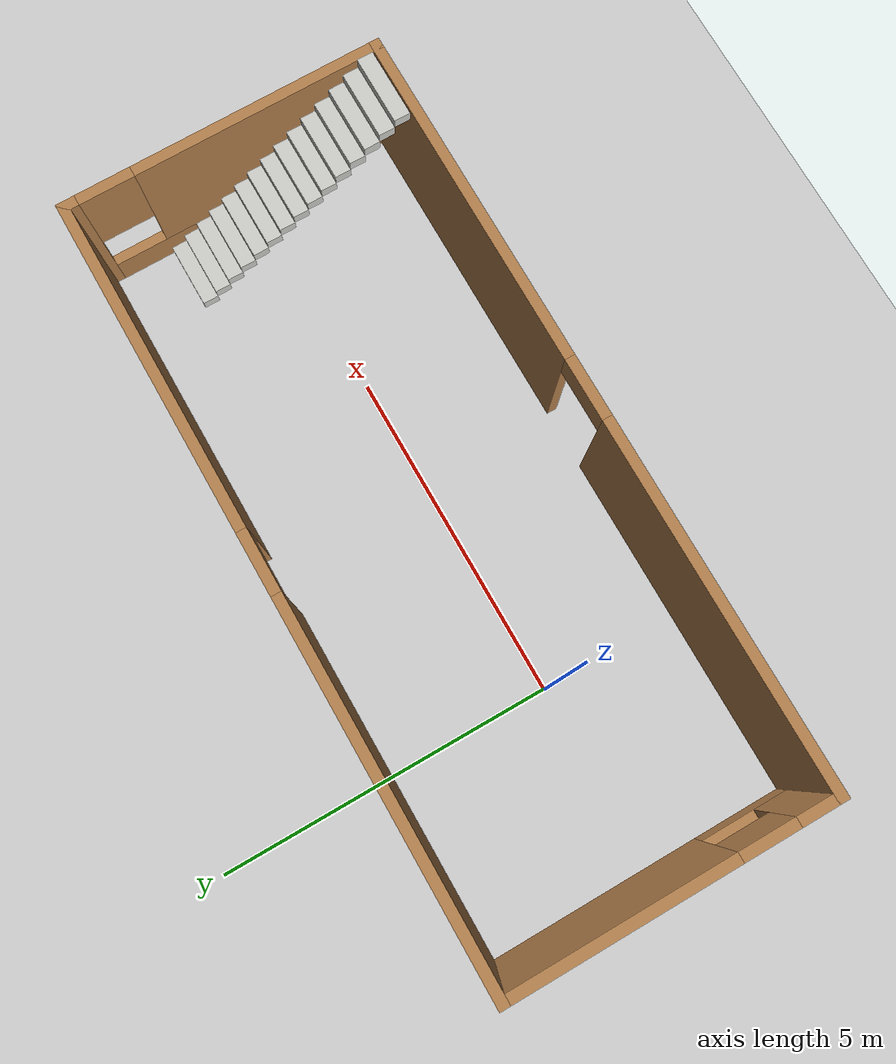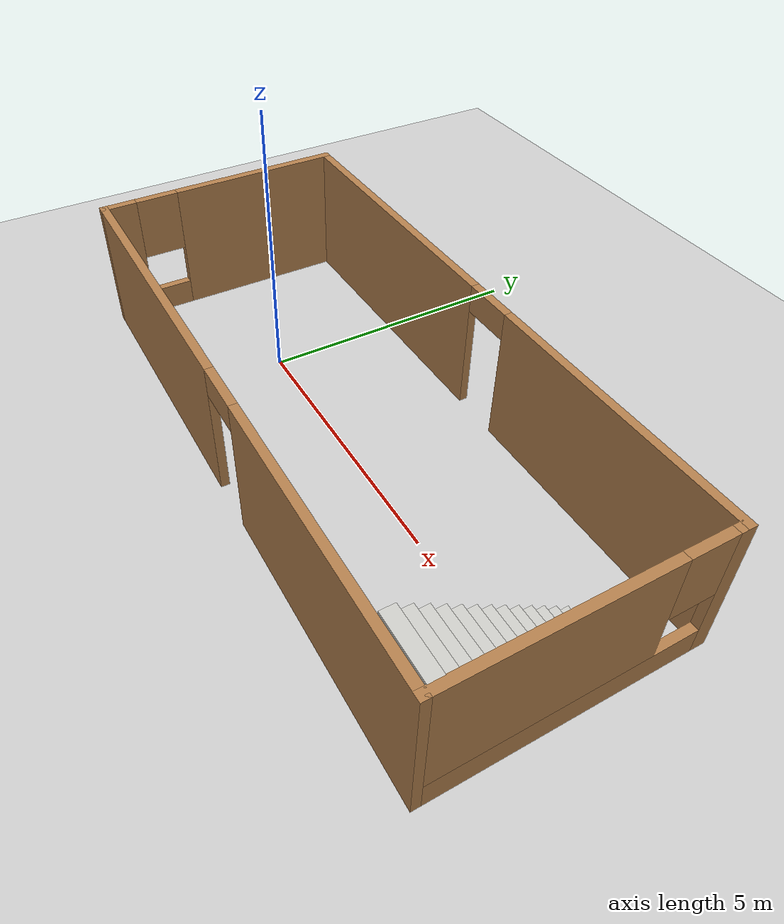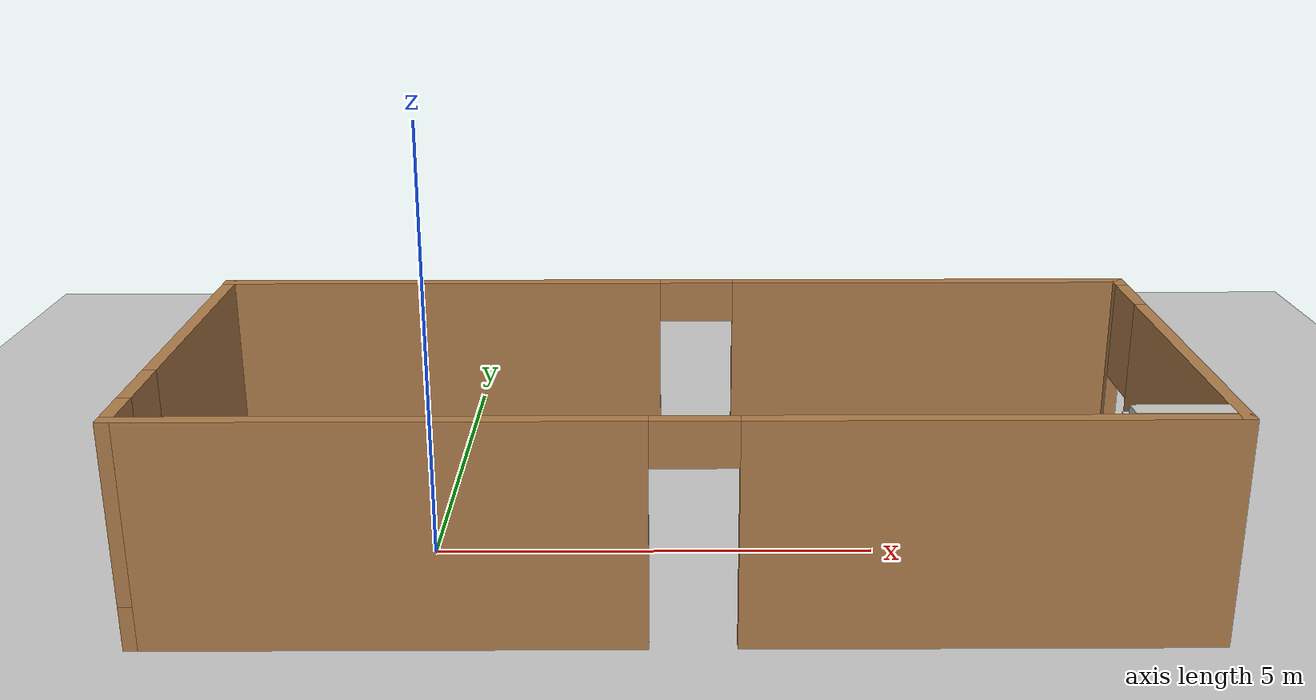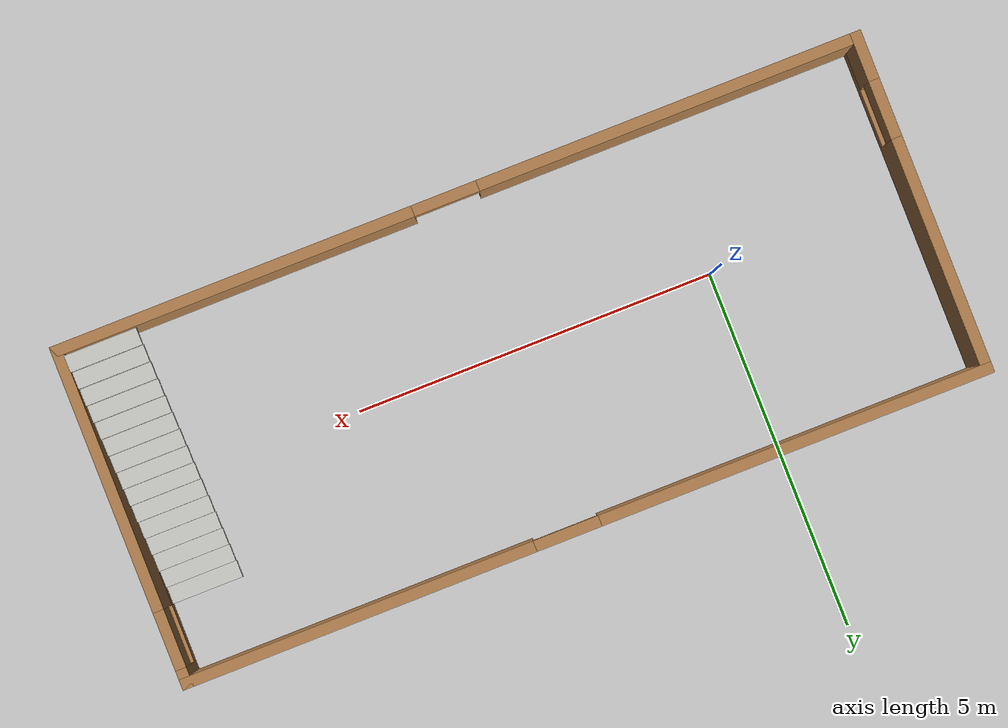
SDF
<sdf version="1.7">
 <world name="default">
  <light name="sun" type="directional">
   <pose>0 0 10 0 -0 0</pose>
   <diffuse>0.8 0.8 0.8 1</diffuse>
   <specular>0.2 0.2 0.2 1</specular>
   <attenuation>
    <range>1000</range>
    <constant>0.9</constant>
    <linear>0.01</linear>
    <quadratic>0.001</quadratic>
   </attenuation>
   <direction>-0.5 0.1 -0.9</direction>
   <spot><inner_angle>0</inner_angle><outer_angle>0</outer_angle><falloff>0</falloff></spot>
  </light>
  <model name="ground_plane">
   <static>1</static>
   <link name="link">
    <collision name="collision">
     <geometry><plane><normal>0 0 1</normal><size>100 100</size></plane></geometry>
     <surface>
      <contact><collide_bitmask>65535</collide_bitmask></contact>
      <friction><ode><mu>100</mu><mu2>50</mu2></ode></friction>
     </surface>
    </collision>
    <visual name="visual">
     <cast_shadows>0</cast_shadows>
     <geometry><plane><normal>0 0 1</normal><size>100 100</size></plane></geometry>
     <material>
      <script><uri>file://media/materials/scripts/gazebo.material</uri><name>Gazebo/Grey</name></script>
     </material>
    </visual>
   </link>
  </model>
  <gravity>0 0 -9.8</gravity>
  <magnetic_field>6e-06 2.3e-05 -4.2e-05</magnetic_field>
  <atmosphere type="adiabatic"/>
  <physics type="ode">
   <max_step_size>0.001</max_step_size>
   <real_time_factor>1</real_time_factor>
   <real_time_update_rate>1000</real_time_update_rate>
  </physics>
  <scene><ambient>0.4 0.4 0.4 1</ambient><background>0.7 0.7 0.7 1</background><shadows>1</shadows></scene>
  <audio><device>default</device></audio>
  <spherical_coordinates>
   <surface_model>EARTH_WGS84</surface_model>
   <latitude_deg>0</latitude_deg>
   <longitude_deg>0</longitude_deg>
   <elevation>0</elevation>
   <heading_deg>0</heading_deg>
  </spherical_coordinates>
  <model name="field_test">
   <pose>2.75171 0.171963 0 0 -0 0</pose>
   <link name="Stairs_2">
    <visual name="Stairs_2_Visual_0">
     <pose>4.98354 1.17849 0.083333 0 -0 0</pose>
     <geometry><box><size>1 0.233333 0.166667</size></box></geometry>
     <material>
      <script><uri>file://media/materials/scripts/gazebo.material</uri><name>Gazebo/CeilingTiled</name></script>
      <ambient>1 1 1 1</ambient>
     </material>
     <meta><layer>0</layer></meta>
    </visual>
    <collision name="Stairs_2_Collision_0">
     <geometry><box><size>1 0.233333 0.166667</size></box></geometry>
     <pose>4.98354 1.17849 0.083333 0 -0 0</pose>
    </collision>
    <visual name="Stairs_2_Visual_1">
     <pose>4.98354 0.945156 0.25 0 -0 0</pose>
     <geometry><box><size>1 0.233333 0.166667</size></box></geometry>
     <material>
      <script><uri>file://media/materials/scripts/gazebo.material</uri><name>Gazebo/CeilingTiled</name></script>
      <ambient>1 1 1 1</ambient>
     </material>
     <meta><layer>0</layer></meta>
    </visual>
    <collision name="Stairs_2_Collision_1">
     <geometry><box><size>1 0.233333 0.166667</size></box></geometry>
     <pose>4.98354 0.945156 0.25 0 -0 0</pose>
    </collision>
    <visual name="Stairs_2_Visual_2">
     <pose>4.98354 0.711823 0.416667 0 -0 0</pose>
     <geometry><box><size>1 0.233333 0.166667</size></box></geometry>
     <material>
      <script><uri>file://media/materials/scripts/gazebo.material</uri><name>Gazebo/CeilingTiled</name></script>
      <ambient>1 1 1 1</ambient>
     </material>
     <meta><layer>0</layer></meta>
    </visual>
    <collision name="Stairs_2_Collision_2">
     <geometry><box><size>1 0.233333 0.166667</size></box></geometry>
     <pose>4.98354 0.711823 0.416667 0 -0 0</pose>
    </collision>
    <visual name="Stairs_2_Visual_3">
     <pose>4.98354 0.478489 0.583333 0 -0 0</pose>
     <geometry><box><size>1 0.233333 0.166667</size></box></geometry>
     <material>
      <script><uri>file://media/materials/scripts/gazebo.material</uri><name>Gazebo/CeilingTiled</name></script>
      <ambient>1 1 1 1</ambient>
     </material>
     <meta><layer>0</layer></meta>
    </visual>
    <collision name="Stairs_2_Collision_3">
     <geometry><box><size>1 0.233333 0.166667</size></box></geometry>
     <pose>4.98354 0.478489 0.583333 0 -0 0</pose>
    </collision>
    <visual name="Stairs_2_Visual_4">
     <pose>4.98354 0.245156 0.75 0 -0 0</pose>
     <geometry><box><size>1 0.233333 0.166667</size></box></geometry>
     <material>
      <script><uri>file://media/materials/scripts/gazebo.material</uri><name>Gazebo/CeilingTiled</name></script>
      <ambient>1 1 1 1</ambient>
     </material>
     <meta><layer>0</layer></meta>
    </visual>
    <collision name="Stairs_2_Collision_4">
     <geometry><box><size>1 0.233333 0.166667</size></box></geometry>
     <pose>4.98354 0.245156 0.75 0 -0 0</pose>
    </collision>
    <visual name="Stairs_2_Visual_5">
     <pose>4.98354 0.011823 0.916667 0 -0 0</pose>
     <geometry><box><size>1 0.233333 0.166667</size></box></geometry>
     <material>
      <script><uri>file://media/materials/scripts/gazebo.material</uri><name>Gazebo/CeilingTiled</name></script>
      <ambient>1 1 1 1</ambient>
     </material>
     <meta><layer>0</layer></meta>
    </visual>
    <collision name="Stairs_2_Collision_5">
     <geometry><box><size>1 0.233333 0.166667</size></box></geometry>
     <pose>4.98354 0.011823 0.916667 0 -0 0</pose>
    </collision>
    <visual name="Stairs_2_Visual_6">
     <pose>4.98354 -0.221511 1.08333 0 -0 0</pose>
     <geometry><box><size>1 0.233333 0.166667</size></box></geometry>
     <material>
      <script><uri>file://media/materials/scripts/gazebo.material</uri><name>Gazebo/CeilingTiled</name></script>
      <ambient>1 1 1 1</ambient>
     </material>
     <meta><layer>0</layer></meta>
    </visual>
    <collision name="Stairs_2_Collision_6">
     <geometry><box><size>1 0.233333 0.166667</size></box></geometry>
     <pose>4.98354 -0.221511 1.08333 0 -0 0</pose>
    </collision>
    <visual name="Stairs_2_Visual_7">
     <pose>4.98354 -0.454844 1.25 0 -0 0</pose>
     <geometry><box><size>1 0.233333 0.166667</size></box></geometry>
     <material>
      <script><uri>file://media/materials/scripts/gazebo.material</uri><name>Gazebo/CeilingTiled</name></script>
      <ambient>1 1 1 1</ambient>
     </material>
     <meta><layer>0</layer></meta>
    </visual>
    <collision name="Stairs_2_Collision_7">
     <geometry><box><size>1 0.233333 0.166667</size></box></geometry>
     <pose>4.98354 -0.454844 1.25 0 -0 0</pose>
    </collision>
    <visual name="Stairs_2_Visual_8">
     <pose>4.98354 -0.688177 1.41667 0 -0 0</pose>
     <geometry><box><size>1 0.233333 0.166667</size></box></geometry>
     <material>
      <script><uri>file://media/materials/scripts/gazebo.material</uri><name>Gazebo/CeilingTiled</name></script>
      <ambient>1 1 1 1</ambient>
     </material>
     <meta><layer>0</layer></meta>
    </visual>
    <collision name="Stairs_2_Collision_8">
     <geometry><box><size>1 0.233333 0.166667</size></box></geometry>
     <pose>4.98354 -0.688177 1.41667 0 -0 0</pose>
    </collision>
    <visual name="Stairs_2_Visual_9">
     <pose>4.98354 -0.921511 1.58333 0 -0 0</pose>
     <geometry><box><size>1 0.233333 0.166667</size></box></geometry>
     <material>
      <script><uri>file://media/materials/scripts/gazebo.material</uri><name>Gazebo/CeilingTiled</name></script>
      <ambient>1 1 1 1</ambient>
     </material>
     <meta><layer>0</layer></meta>
    </visual>
    <collision name="Stairs_2_Collision_9">
     <geometry><box><size>1 0.233333 0.166667</size></box></geometry>
     <pose>4.98354 -0.921511 1.58333 0 -0 0</pose>
    </collision>
    <visual name="Stairs_2_Visual_10">
     <pose>4.98354 -1.15484 1.75 0 -0 0</pose>
     <geometry><box><size>1 0.233333 0.166667</size></box></geometry>
     <material>
      <script><uri>file://media/materials/scripts/gazebo.material</uri><name>Gazebo/CeilingTiled</name></script>
      <ambient>1 1 1 1</ambient>
     </material>
     <meta><layer>0</layer></meta>
    </visual>
    <collision name="Stairs_2_Collision_10">
     <geometry><box><size>1 0.233333 0.166667</size></box></geometry>
     <pose>4.98354 -1.15484 1.75 0 -0 0</pose>
    </collision>
    <visual name="Stairs_2_Visual_11">
     <pose>4.98354 -1.38818 1.91667 0 -0 0</pose>
     <geometry><box><size>1 0.233333 0.166667</size></box></geometry>
     <material>
      <script><uri>file://media/materials/scripts/gazebo.material</uri><name>Gazebo/CeilingTiled</name></script>
      <ambient>1 1 1 1</ambient>
     </material>
     <meta><layer>0</layer></meta>
    </visual>
    <collision name="Stairs_2_Collision_11">
     <geometry><box><size>1 0.233333 0.166667</size></box></geometry>
     <pose>4.98354 -1.38818 1.91667 0 -0 0</pose>
    </collision>
    <visual name="Stairs_2_Visual_12">
     <pose>4.98354 -1.62151 2.08333 0 -0 0</pose>
     <geometry><box><size>1 0.233333 0.166667</size></box></geometry>
     <material>
      <script><uri>file://media/materials/scripts/gazebo.material</uri><name>Gazebo/CeilingTiled</name></script>
      <ambient>1 1 1 1</ambient>
     </material>
     <meta><layer>0</layer></meta>
    </visual>
    <collision name="Stairs_2_Collision_12">
     <geometry><box><size>1 0.233333 0.166667</size></box></geometry>
     <pose>4.98354 -1.62151 2.08333 0 -0 0</pose>
    </collision>
    <visual name="Stairs_2_Visual_13">
     <pose>4.98354 -1.85484 2.25 0 -0 0</pose>
     <geometry><box><size>1 0.233333 0.166667</size></box></geometry>
     <material>
      <script><uri>file://media/materials/scripts/gazebo.material</uri><name>Gazebo/CeilingTiled</name></script>
      <ambient>1 1 1 1</ambient>
     </material>
     <meta><layer>0</layer></meta>
    </visual>
    <collision name="Stairs_2_Collision_13">
     <geometry><box><size>1 0.233333 0.166667</size></box></geometry>
     <pose>4.98354 -1.85484 2.25 0 -0 0</pose>
    </collision>
    <visual name="Stairs_2_Visual_14">
     <pose>4.98354 -2.08818 2.41667 0 -0 0</pose>
     <geometry><box><size>1 0.233333 0.166667</size></box></geometry>
     <material>
      <script><uri>file://media/materials/scripts/gazebo.material</uri><name>Gazebo/CeilingTiled</name></script>
      <ambient>1 1 1 1</ambient>
     </material>
     <meta><layer>0</layer></meta>
    </visual>
    <collision name="Stairs_2_Collision_14">
     <geometry><box><size>1 0.233333 0.166667</size></box></geometry>
     <pose>4.98354 -2.08818 2.41667 0 -0 0</pose>
    </collision>
   </link>
   <link name="Wall_13">
    <pose>-0 2.3 0 0 -0 0</pose>
    <visual name="Wall_13_Visual_0">
     <pose>-2.90309 0 1.25 0 -0 0</pose>
     <geometry><box><size>5.44383 0.15 2.5</size></box></geometry>
     <material>
      <script><uri>file://media/materials/scripts/gazebo.material</uri><name>Gazebo/Wood</name></script>
      <ambient>1 1 1 1</ambient>
     </material>
     <meta><layer>0</layer></meta>
    </visual>
    <collision name="Wall_13_Collision_0">
     <geometry><box><size>5.44383 0.15 2.5</size></box></geometry>
     <pose>-2.90309 0 1.25 0 -0 0</pose>
    </collision>
    <visual name="Wall_13_Visual_1">
     <pose>3.17191 0 1.25 0 -0 0</pose>
     <geometry><box><size>4.90617 0.15 2.5</size></box></geometry>
     <material>
      <script><uri>file://media/materials/scripts/gazebo.material</uri><name>Gazebo/Wood</name></script>
      <ambient>1 1 1 1</ambient>
     </material>
     <meta><layer>0</layer></meta>
    </visual>
    <collision name="Wall_13_Collision_1">
     <geometry><box><size>4.90617 0.15 2.5</size></box></geometry>
     <pose>3.17191 0 1.25 0 -0 0</pose>
    </collision>
    <visual name="Wall_13_Visual_2">
     <pose>0.268826 0 2.25 0 -0 0</pose>
     <geometry><box><size>0.9 0.15 0.5</size></box></geometry>
     <material>
      <script><uri>file://media/materials/scripts/gazebo.material</uri><name>Gazebo/Wood</name></script>
      <ambient>1 1 1 1</ambient>
     </material>
     <meta><layer>0</layer></meta>
    </visual>
    <collision name="Wall_13_Collision_2">
     <geometry><box><size>0.9 0.15 0.5</size></box></geometry>
     <pose>0.268826 0 2.25 0 -0 0</pose>
    </collision>
   </link>
   <link name="Wall_14">
    <pose>5.55 -0 0 0 -0 -1.5708</pose>
    <visual name="Wall_14_Visual_0">
     <pose>-2.2399 0 1.25 0 -0 0</pose>
     <geometry><box><size>0.270202 0.15 2.5</size></box></geometry>
     <material>
      <script><uri>file://media/materials/scripts/gazebo.material</uri><name>Gazebo/Wood</name></script>
      <ambient>1 1 1 1</ambient>
     </material>
     <meta><layer>0</layer></meta>
    </visual>
    <collision name="Wall_14_Collision_0">
     <geometry><box><size>0.270202 0.15 2.5</size></box></geometry>
     <pose>-2.2399 0 1.25 0 -0 0</pose>
    </collision>
    <visual name="Wall_14_Visual_1">
     <pose>0.135101 0 0.25 0 -0 0</pose>
     <geometry><box><size>4.4798 0.15 0.5</size></box></geometry>
     <material>
      <script><uri>file://media/materials/scripts/gazebo.material</uri><name>Gazebo/Wood</name></script>
      <ambient>1 1 1 1</ambient>
     </material>
     <meta><layer>0</layer></meta>
    </visual>
    <collision name="Wall_14_Collision_1">
     <geometry><box><size>4.4798 0.15 0.5</size></box></geometry>
     <pose>0.135101 0 0.25 0 -0 0</pose>
    </collision>
    <visual name="Wall_14_Visual_2">
     <pose>0.535101 0 1.5 0 -0 0</pose>
     <geometry><box><size>3.6798 0.15 2</size></box></geometry>
     <material>
      <script><uri>file://media/materials/scripts/gazebo.material</uri><name>Gazebo/Wood</name></script>
      <ambient>1 1 1 1</ambient>
     </material>
     <meta><layer>0</layer></meta>
    </visual>
    <collision name="Wall_14_Collision_2">
     <geometry><box><size>3.6798 0.15 2</size></box></geometry>
     <pose>0.535101 0 1.5 0 -0 0</pose>
    </collision>
    <visual name="Wall_14_Visual_3">
     <pose>-1.7048 0 1.9 0 -0 0</pose>
     <geometry><box><size>0.8 0.15 1.2</size></box></geometry>
     <material>
      <script><uri>file://media/materials/scripts/gazebo.material</uri><name>Gazebo/Wood</name></script>
      <ambient>1 1 1 1</ambient>
     </material>
     <meta><layer>0</layer></meta>
    </visual>
    <collision name="Wall_14_Collision_3">
     <geometry><box><size>0.8 0.15 1.2</size></box></geometry>
     <pose>-1.7048 0 1.9 0 -0 0</pose>
    </collision>
   </link>
   <link name="Wall_15">
    <pose>-0 -2.3 0 0 -0 3.14159</pose>
    <visual name="Wall_15_Visual_0">
     <pose>-3.11868 0 1.25 0 -0 0</pose>
     <geometry><box><size>5.01264 0.15 2.5</size></box></geometry>
     <material>
      <script><uri>file://media/materials/scripts/gazebo.material</uri><name>Gazebo/Wood</name></script>
      <ambient>1 1 1 1</ambient>
     </material>
     <meta><layer>0</layer></meta>
    </visual>
    <collision name="Wall_15_Collision_0">
     <geometry><box><size>5.01264 0.15 2.5</size></box></geometry>
     <pose>-3.11868 0 1.25 0 -0 0</pose>
    </collision>
    <visual name="Wall_15_Visual_1">
     <pose>2.95632 0 1.25 0 -0 0</pose>
     <geometry><box><size>5.33737 0.15 2.5</size></box></geometry>
     <material>
      <script><uri>file://media/materials/scripts/gazebo.material</uri><name>Gazebo/Wood</name></script>
      <ambient>1 1 1 1</ambient>
     </material>
     <meta><layer>0</layer></meta>
    </visual>
    <collision name="Wall_15_Collision_1">
     <geometry><box><size>5.33737 0.15 2.5</size></box></geometry>
     <pose>2.95632 0 1.25 0 -0 0</pose>
    </collision>
    <visual name="Wall_15_Visual_2">
     <pose>-0.162365 0 2.25 0 -0 0</pose>
     <geometry><box><size>0.9 0.15 0.5</size></box></geometry>
     <material>
      <script><uri>file://media/materials/scripts/gazebo.material</uri><name>Gazebo/Wood</name></script>
      <ambient>1 1 1 1</ambient>
     </material>
     <meta><layer>0</layer></meta>
    </visual>
    <collision name="Wall_15_Collision_2">
     <geometry><box><size>0.9 0.15 0.5</size></box></geometry>
     <pose>-0.162365 0 2.25 0 -0 0</pose>
    </collision>
   </link>
   <link name="Wall_8">
    <pose>-5.55 -0 0 0 -0 -1.5708</pose>
    <visual name="Wall_8_Visual_0">
     <pose>-0.734233 0 1.25 0 -0 0</pose>
     <geometry><box><size>3.28153 0.15 2.5</size></box></geometry>
     <material>
      <script><uri>file://media/materials/scripts/gazebo.material</uri><name>Gazebo/Wood</name></script>
      <ambient>1 1 1 1</ambient>
     </material>
     <meta><layer>0</layer></meta>
    </visual>
    <collision name="Wall_8_Collision_0">
     <geometry><box><size>3.28153 0.15 2.5</size></box></geometry>
     <pose>-0.734233 0 1.25 0 -0 0</pose>
    </collision>
    <visual name="Wall_8_Visual_1">
     <pose>1.64077 0 0.25 0 -0 0</pose>
     <geometry><box><size>1.46847 0.15 0.5</size></box></geometry>
     <material>
      <script><uri>file://media/materials/scripts/gazebo.material</uri><name>Gazebo/Wood</name></script>
      <ambient>1 1 1 1</ambient>
     </material>
     <meta><layer>0</layer></meta>
    </visual>
    <collision name="Wall_8_Collision_1">
     <geometry><box><size>1.46847 0.15 0.5</size></box></geometry>
     <pose>1.64077 0 0.25 0 -0 0</pose>
    </collision>
    <visual name="Wall_8_Visual_2">
     <pose>2.04077 0 1.5 0 -0 0</pose>
     <geometry><box><size>0.668466 0.15 2</size></box></geometry>
     <material>
      <script><uri>file://media/materials/scripts/gazebo.material</uri><name>Gazebo/Wood</name></script>
      <ambient>1 1 1 1</ambient>
     </material>
     <meta><layer>0</layer></meta>
    </visual>
    <collision name="Wall_8_Collision_2">
     <geometry><box><size>0.668466 0.15 2</size></box></geometry>
     <pose>2.04077 0 1.5 0 -0 0</pose>
    </collision>
    <visual name="Wall_8_Visual_3">
     <pose>1.30653 0 1.9 0 -0 0</pose>
     <geometry><box><size>0.8 0.15 1.2</size></box></geometry>
     <material>
      <script><uri>file://media/materials/scripts/gazebo.material</uri><name>Gazebo/Wood</name></script>
      <ambient>1 1 1 1</ambient>
     </material>
     <meta><layer>0</layer></meta>
    </visual>
    <collision name="Wall_8_Collision_3">
     <geometry><box><size>0.8 0.15 1.2</size></box></geometry>
     <pose>1.30653 0 1.9 0 -0 0</pose>
    </collision>
   </link>
   <static>1</static>
  </model>
 </world>
</sdf>
